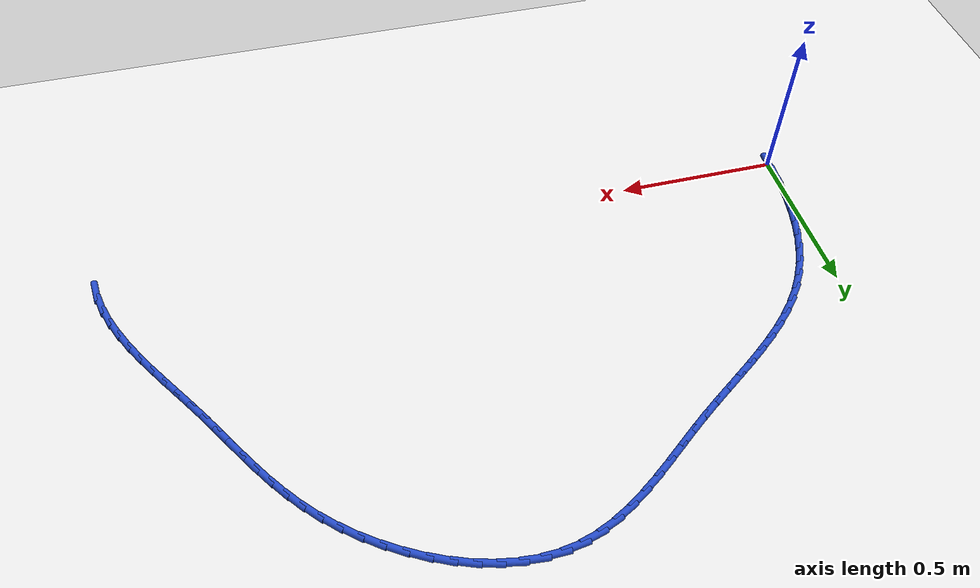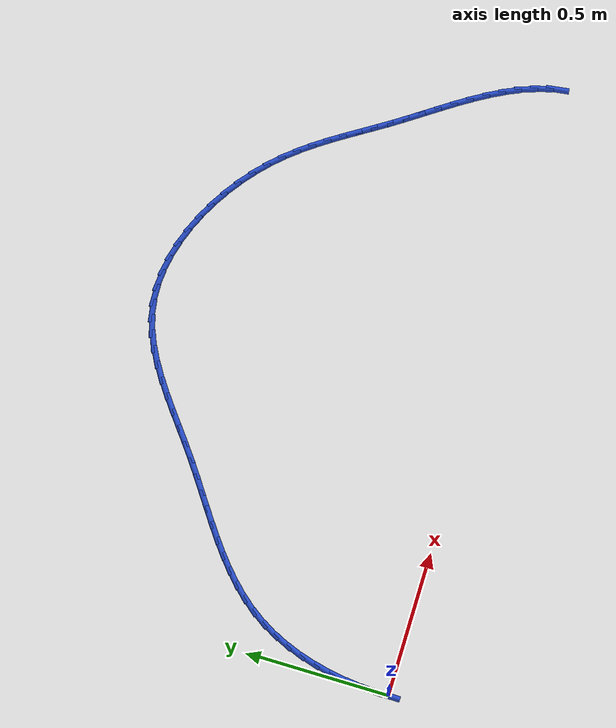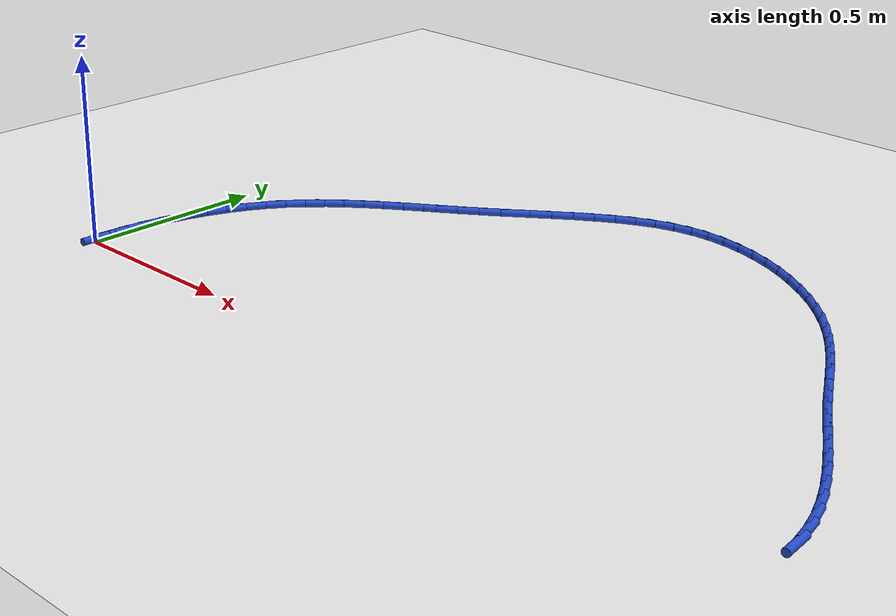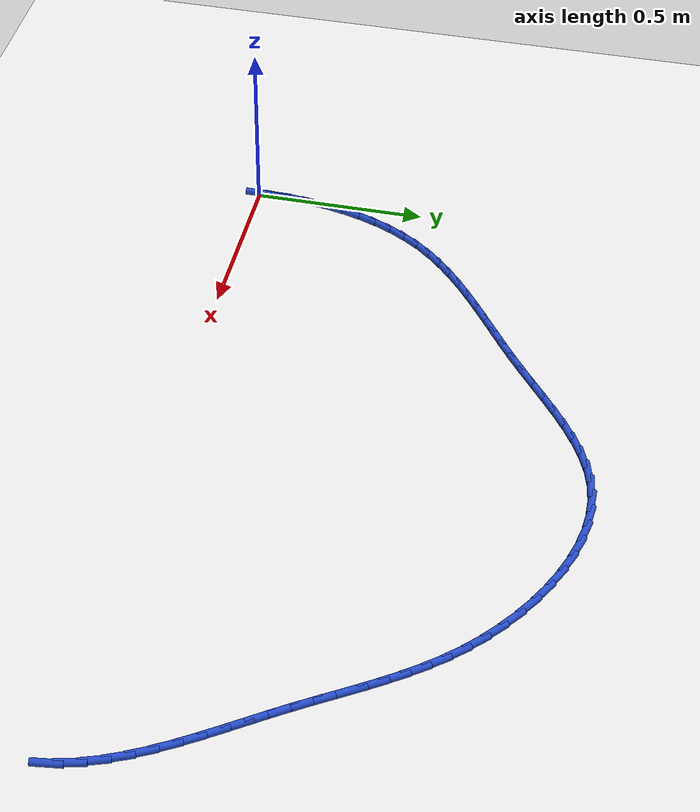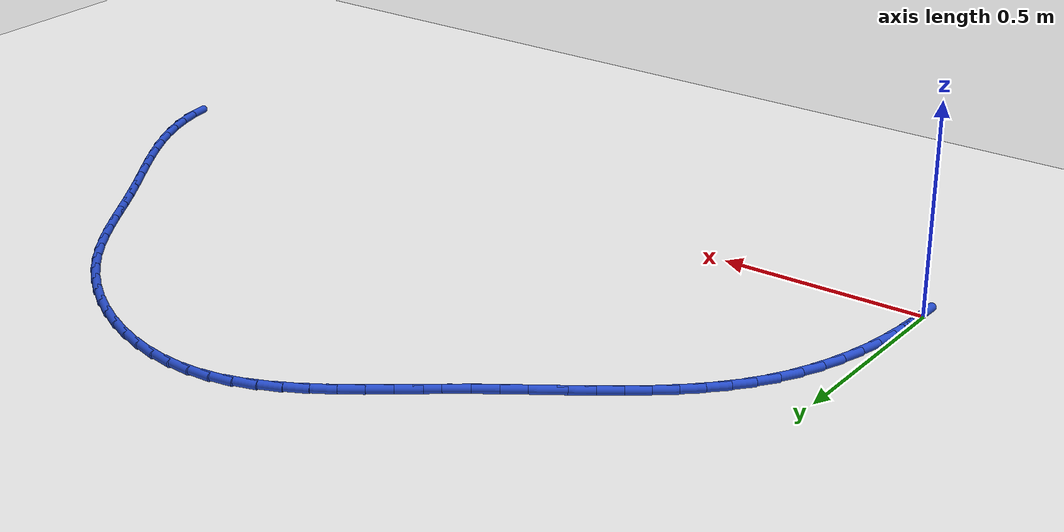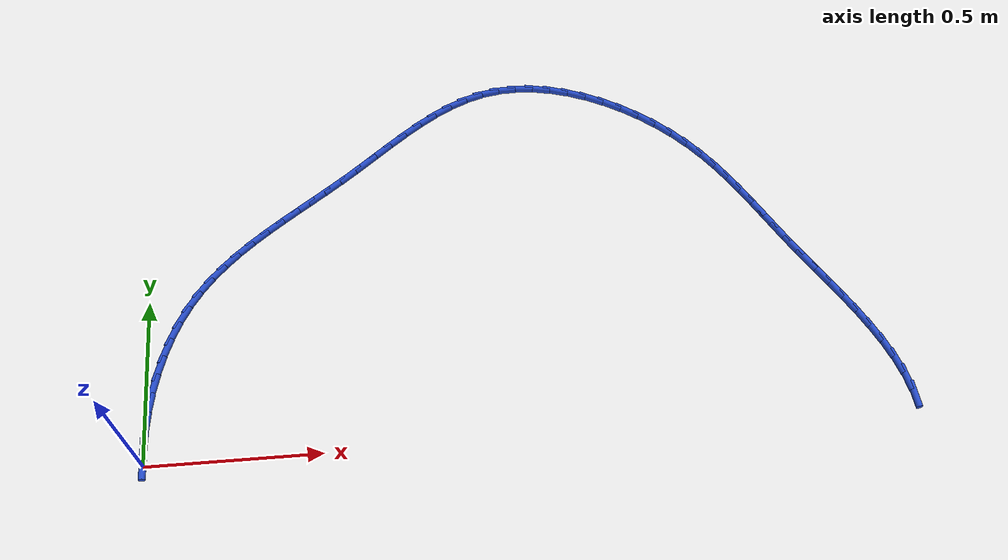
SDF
<sdf version="1.6">
 <world name="default">
  <model name="ground_plane">
   <static>1</static>
   <link name="link">
    <collision name="collision">
     <geometry><plane><normal>0 0 1</normal><size>100 100</size></plane></geometry>
     <surface><friction><ode><mu>100</mu><mu2>50</mu2></ode></friction></surface>
    </collision>
    <visual name="visual">
     <cast_shadows>0</cast_shadows>
     <geometry><plane><normal>0 0 1</normal><size>100 100</size></plane></geometry>
     <material>
      <script><uri>file://media/materials/scripts/gazebo.material</uri><name>Gazebo/WhiteGlow</name></script>
     </material>
    </visual>
   </link>
  </model>
  <model name="line">
   <link name="link_0">
    <pose>-1.214306433183765e-17 -9.71445146547012e-17 0.01 0 1.57 1.5540721267562472</pose>
    <collision name="collision">
     <geometry><cylinder><radius>0.01</radius><length>0.08</length></cylinder></geometry>
    </collision>
    <visual name="visual">
     <material>
      <script><name>Gazebo/Blue</name><uri>file://media/materials/scripts/gazebo.material</uri></script>
     </material>
     <geometry><cylinder><radius>0.01</radius><length>0.08</length></cylinder></geometry>
    </visual>
   </link>
   <link name="link_1">
    <pose>0.0009727735310104009 0.05816020093755722 0.01 0 1.57 1.5020352159463675</pose>
    <collision name="collision">
     <geometry><cylinder><radius>0.01</radius><length>0.08</length></cylinder></geometry>
    </collision>
    <visual name="visual">
     <material>
      <script><name>Gazebo/Blue</name><uri>file://media/materials/scripts/gazebo.material</uri></script>
     </material>
     <geometry><cylinder><radius>0.01</radius><length>0.08</length></cylinder></geometry>
    </visual>
   </link>
   <link name="link_2">
    <pose>0.004967329615018454 0.1161618607245263 0.01 0 1.57 1.4477439390376392</pose>
    <collision name="collision">
     <geometry><cylinder><radius>0.01</radius><length>0.08</length></cylinder></geometry>
    </collision>
    <visual name="visual">
     <material>
      <script><name>Gazebo/Blue</name><uri>file://media/materials/scripts/gazebo.material</uri></script>
     </material>
     <geometry><cylinder><radius>0.01</radius><length>0.08</length></cylinder></geometry>
    </visual>
   </link>
   <link name="link_3">
    <pose>0.012076144360255375 0.17364061676374193 0.01 0 1.57 1.3904949208233681</pose>
    <collision name="collision">
     <geometry><cylinder><radius>0.01</radius><length>0.08</length></cylinder></geometry>
    </collision>
    <visual name="visual">
     <material>
      <script><name>Gazebo/Blue</name><uri>file://media/materials/scripts/gazebo.material</uri></script>
     </material>
     <geometry><cylinder><radius>0.01</radius><length>0.08</length></cylinder></geometry>
    </visual>
   </link>
   <link name="link_4">
    <pose>0.02239169387495231 0.23023210645803868 0.01 0 1.57 1.3295662243365454</pose>
    <collision name="collision">
     <geometry><cylinder><radius>0.01</radius><length>0.08</length></cylinder></geometry>
    </collision>
    <visual name="visual">
     <material>
      <script><name>Gazebo/Blue</name><uri>file://media/materials/scripts/gazebo.material</uri></script>
     </material>
     <geometry><cylinder><radius>0.01</radius><length>0.08</length></cylinder></geometry>
    </visual>
   </link>
   <link name="link_5">
    <pose>0.036006454267340504 0.2855719672102514 0.01 0 1.57 1.2642233957185722</pose>
    <collision name="collision">
     <geometry><cylinder><radius>0.01</radius><length>0.08</length></cylinder></geometry>
    </collision>
    <visual name="visual">
     <material>
      <script><name>Gazebo/Blue</name><uri>file://media/materials/scripts/gazebo.material</uri></script>
     </material>
     <geometry><cylinder><radius>0.01</radius><length>0.08</length></cylinder></geometry>
    </visual>
   </link>
   <link name="link_6">
    <pose>0.05301290164565114 0.3392958364232149 0.01 0 1.57 1.1937399925289962</pose>
    <collision name="collision">
     <geometry><cylinder><radius>0.01</radius><length>0.08</length></cylinder></geometry>
    </collision>
    <visual name="visual">
     <material>
      <script><name>Gazebo/Blue</name><uri>file://media/materials/scripts/gazebo.material</uri></script>
     </material>
     <geometry><cylinder><radius>0.01</radius><length>0.08</length></cylinder></geometry>
    </visual>
   </link>
   <link name="link_7">
    <pose>0.0735035121181154 0.39103935149976377 0.01 0 1.57 1.1174385151535993</pose>
    <collision name="collision">
     <geometry><cylinder><radius>0.01</radius><length>0.08</length></cylinder></geometry>
    </collision>
    <visual name="visual">
     <material>
      <script><name>Gazebo/Blue</name><uri>file://media/materials/scripts/gazebo.material</uri></script>
     </material>
     <geometry><cylinder><radius>0.01</radius><length>0.08</length></cylinder></geometry>
    </visual>
   </link>
   <link name="link_8">
    <pose>0.09757076179296449 0.4404381498427328 0.01 0 1.57 1.0347579714537405</pose>
    <collision name="collision">
     <geometry><cylinder><radius>0.01</radius><length>0.08</length></cylinder></geometry>
    </collision>
    <visual name="visual">
     <material>
      <script><name>Gazebo/Blue</name><uri>file://media/materials/scripts/gazebo.material</uri></script>
     </material>
     <geometry><cylinder><radius>0.01</radius><length>0.08</length></cylinder></geometry>
    </visual>
   </link>
   <link name="link_9">
    <pose>0.1253071267784296 0.4871278688549566 0.01 0 1.57 0.9463374898829497</pose>
    <collision name="collision">
     <geometry><cylinder><radius>0.01</radius><length>0.08</length></cylinder></geometry>
    </collision>
    <visual name="visual">
     <material>
      <script><name>Gazebo/Blue</name><uri>file://media/materials/scripts/gazebo.material</uri></script>
     </material>
     <geometry><cylinder><radius>0.01</radius><length>0.08</length></cylinder></geometry>
    </visual>
   </link>
   <link name="link_10">
    <pose>0.1567742886520805 0.5307921194336553 0.01 0 1.57 0.862358845641101</pose>
    <collision name="collision">
     <geometry><cylinder><radius>0.01</radius><length>0.08</length></cylinder></geometry>
    </collision>
    <visual name="visual">
     <material>
      <script><name>Gazebo/Blue</name><uri>file://media/materials/scripts/gazebo.material</uri></script>
     </material>
     <geometry><cylinder><radius>0.01</radius><length>0.08</length></cylinder></geometry>
    </visual>
   </link>
   <link name="link_11">
    <pose>0.19172949457523022 0.5715887779525914 0.01 0 1.57 0.7897264656168406</pose>
    <collision name="collision">
     <geometry><cylinder><radius>0.01</radius><length>0.08</length></cylinder></geometry>
    </collision>
    <visual name="visual">
     <material>
      <script><name>Gazebo/Blue</name><uri>file://media/materials/scripts/gazebo.material</uri></script>
     </material>
     <geometry><cylinder><radius>0.01</radius><length>0.08</length></cylinder></geometry>
    </visual>
   </link>
   <link name="link_12">
    <pose>0.2297563421881506 0.6099462420158809 0.01 0 1.57 0.729242175847578</pose>
    <collision name="collision">
     <geometry><cylinder><radius>0.01</radius><length>0.08</length></cylinder></geometry>
    </collision>
    <visual name="visual">
     <material>
      <script><name>Gazebo/Blue</name><uri>file://media/materials/scripts/gazebo.material</uri></script>
     </material>
     <geometry><cylinder><radius>0.01</radius><length>0.08</length></cylinder></geometry>
    </visual>
   </link>
   <link name="link_13">
    <pose>0.270436404858347 0.6462960627564032 0.01 0 1.57 0.6809874851181144</pose>
    <collision name="collision">
     <geometry><cylinder><radius>0.01</radius><length>0.08</length></cylinder></geometry>
    </collision>
    <visual name="visual">
     <material>
      <script><name>Gazebo/Blue</name><uri>file://media/materials/scripts/gazebo.material</uri></script>
     </material>
     <geometry><cylinder><radius>0.01</radius><length>0.08</length></cylinder></geometry>
    </visual>
   </link>
   <link name="link_14">
    <pose>0.313351255953325 0.6810697913070374 0.01 0 1.57 0.6446558508736686</pose>
    <collision name="collision">
     <geometry><cylinder><radius>0.01</radius><length>0.08</length></cylinder></geometry>
    </collision>
    <visual name="visual">
     <material>
      <script><name>Gazebo/Blue</name><uri>file://media/materials/scripts/gazebo.material</uri></script>
     </material>
     <geometry><cylinder><radius>0.01</radius><length>0.08</length></cylinder></geometry>
    </visual>
   </link>
   <link name="link_15">
    <pose>0.3580824688405901 0.7146989788006636 0.01 0 1.57 0.6197728411225927</pose>
    <collision name="collision">
     <geometry><cylinder><radius>0.01</radius><length>0.08</length></cylinder></geometry>
    </collision>
    <visual name="visual">
     <material>
      <script><name>Gazebo/Blue</name><uri>file://media/materials/scripts/gazebo.material</uri></script>
     </material>
     <geometry><cylinder><radius>0.01</radius><length>0.08</length></cylinder></geometry>
    </visual>
   </link>
   <link name="link_16">
    <pose>0.4042116168876474 0.7476151763701604 0.01 0 1.57 0.6058470002908375</pose>
    <collision name="collision">
     <geometry><cylinder><radius>0.01</radius><length>0.08</length></cylinder></geometry>
    </collision>
    <visual name="visual">
     <material>
      <script><name>Gazebo/Blue</name><uri>file://media/materials/scripts/gazebo.material</uri></script>
     </material>
     <geometry><cylinder><radius>0.01</radius><length>0.08</length></cylinder></geometry>
    </visual>
   </link>
   <link name="link_17">
    <pose>0.4513202734620028 0.7802499351484081 0.01 0 1.57 0.6024572084732797</pose>
    <collision name="collision">
     <geometry><cylinder><radius>0.01</radius><length>0.08</length></cylinder></geometry>
    </collision>
    <visual name="visual">
     <material>
      <script><name>Gazebo/Blue</name><uri>file://media/materials/scripts/gazebo.material</uri></script>
     </material>
     <geometry><cylinder><radius>0.01</radius><length>0.08</length></cylinder></geometry>
    </visual>
   </link>
   <link name="link_18">
    <pose>0.49899001193116144 0.8130348062682856 0.01 0 1.57 0.6092907750018002</pose>
    <collision name="collision">
     <geometry><cylinder><radius>0.01</radius><length>0.08</length></cylinder></geometry>
    </collision>
    <visual name="visual">
     <material>
      <script><name>Gazebo/Blue</name><uri>file://media/materials/scripts/gazebo.material</uri></script>
     </material>
     <geometry><cylinder><radius>0.01</radius><length>0.08</length></cylinder></geometry>
    </visual>
   </link>
   <link name="link_19">
    <pose>0.5468024056626288 0.8464013408626727 0.01 0 1.57 0.6261362705788248</pose>
    <collision name="collision">
     <geometry><cylinder><radius>0.01</radius><length>0.08</length></cylinder></geometry>
    </collision>
    <visual name="visual">
     <material>
      <script><name>Gazebo/Blue</name><uri>file://media/materials/scripts/gazebo.material</uri></script>
     </material>
     <geometry><cylinder><radius>0.01</radius><length>0.08</length></cylinder></geometry>
    </visual>
   </link>
   <link name="link_20">
    <pose>0.5943392575806674 0.8807806388584037 0.01 0 1.57 0.6470503060719165</pose>
    <collision name="collision">
     <geometry><cylinder><radius>0.01</radius><length>0.08</length></cylinder></geometry>
    </collision>
    <visual name="visual">
     <material>
      <script><name>Gazebo/Blue</name><uri>file://media/materials/scripts/gazebo.material</uri></script>
     </material>
     <geometry><cylinder><radius>0.01</radius><length>0.08</length></cylinder></geometry>
    </visual>
   </link>
   <link name="link_21">
    <pose>0.6413405256945882 0.9162929379305289 0.01 0 1.57 0.6561812984485437</pose>
    <collision name="collision">
     <geometry><cylinder><radius>0.01</radius><length>0.08</length></cylinder></geometry>
    </collision>
    <visual name="visual">
     <material>
      <script><name>Gazebo/Blue</name><uri>file://media/materials/scripts/gazebo.material</uri></script>
     </material>
     <geometry><cylinder><radius>0.01</radius><length>0.08</length></cylinder></geometry>
    </visual>
   </link>
   <link name="link_22">
    <pose>0.6879800844440704 0.9522055898757288 0.01 0 1.57 0.6509053188648611</pose>
    <collision name="collision">
     <geometry><cylinder><radius>0.01</radius><length>0.08</length></cylinder></geometry>
    </collision>
    <visual name="visual">
     <material>
      <script><name>Gazebo/Blue</name><uri>file://media/materials/scripts/gazebo.material</uri></script>
     </material>
     <geometry><cylinder><radius>0.01</radius><length>0.08</length></cylinder></geometry>
    </visual>
   </link>
   <link name="link_23">
    <pose>0.7345055653016336 0.9876409731102385 0.01 0 1.57 0.6308489117831448</pose>
    <collision name="collision">
     <geometry><cylinder><radius>0.01</radius><length>0.08</length></cylinder></geometry>
    </collision>
    <visual name="visual">
     <material>
      <script><name>Gazebo/Blue</name><uri>file://media/materials/scripts/gazebo.material</uri></script>
     </material>
     <geometry><cylinder><radius>0.01</radius><length>0.08</length></cylinder></geometry>
    </visual>
   </link>
   <link name="link_24">
    <pose>0.781164599739798 1.0217214660502938 0.01 0 1.57 0.5951479186685841</pose>
    <collision name="collision">
     <geometry><cylinder><radius>0.01</radius><length>0.08</length></cylinder></geometry>
    </collision>
    <visual name="visual">
     <material>
      <script><name>Gazebo/Blue</name><uri>file://media/materials/scripts/gazebo.material</uri></script>
     </material>
     <geometry><cylinder><radius>0.01</radius><length>0.08</length></cylinder></geometry>
    </visual>
   </link>
   <link name="link_25">
    <pose>0.8282048192310844 1.05356944711213 0.01 0 1.57 0.5425212122136491</pose>
    <collision name="collision">
     <geometry><cylinder><radius>0.01</radius><length>0.08</length></cylinder></geometry>
    </collision>
    <visual name="visual">
     <material>
      <script><name>Gazebo/Blue</name><uri>file://media/materials/scripts/gazebo.material</uri></script>
     </material>
     <geometry><cylinder><radius>0.01</radius><length>0.08</length></cylinder></geometry>
    </visual>
   </link>
   <link name="link_26">
    <pose>0.8758738552480124 1.0823072947119825 0.01 0 1.57 0.4714830755557615</pose>
    <collision name="collision">
     <geometry><cylinder><radius>0.01</radius><length>0.08</length></cylinder></geometry>
    </collision>
    <visual name="visual">
     <material>
      <script><name>Gazebo/Blue</name><uri>file://media/materials/scripts/gazebo.material</uri></script>
     </material>
     <geometry><cylinder><radius>0.01</radius><length>0.08</length></cylinder></geometry>
    </visual>
   </link>
   <link name="link_27">
    <pose>0.9244193392631026 1.107057387266087 0.01 0 1.57 0.38079949614361625</pose>
    <collision name="collision">
     <geometry><cylinder><radius>0.01</radius><length>0.08</length></cylinder></geometry>
    </collision>
    <visual name="visual">
     <material>
      <script><name>Gazebo/Blue</name><uri>file://media/materials/scripts/gazebo.material</uri></script>
     </material>
     <geometry><cylinder><radius>0.01</radius><length>0.08</length></cylinder></geometry>
    </visual>
   </link>
   <link name="link_28">
    <pose>0.9740889027488753 1.1269421031906788 0.01 0 1.57 0.27028440935308357</pose>
    <collision name="collision">
     <geometry><cylinder><radius>0.01</radius><length>0.08</length></cylinder></geometry>
    </collision>
    <visual name="visual">
     <material>
      <script><name>Gazebo/Blue</name><uri>file://media/materials/scripts/gazebo.material</uri></script>
     </material>
     <geometry><cylinder><radius>0.01</radius><length>0.08</length></cylinder></geometry>
    </visual>
   </link>
   <link name="link_29">
    <pose>1.0251301771778503 1.1410838209019933 0.01 0 1.57 0.1431048206023963</pose>
    <collision name="collision">
     <geometry><cylinder><radius>0.01</radius><length>0.08</length></cylinder></geometry>
    </collision>
    <visual name="visual">
     <material>
      <script><name>Gazebo/Blue</name><uri>file://media/materials/scripts/gazebo.material</uri></script>
     </material>
     <geometry><cylinder><radius>0.01</radius><length>0.08</length></cylinder></geometry>
    </visual>
   </link>
   <link name="link_30">
    <pose>1.0777567493860596 1.1486667716092285 0.01 0 1.57 0.01783977474080383</pose>
    <collision name="collision">
     <geometry><cylinder><radius>0.01</radius><length>0.08</length></cylinder></geometry>
    </collision>
    <visual name="visual">
     <material>
      <script><name>Gazebo/Blue</name><uri>file://media/materials/scripts/gazebo.material</uri></script>
     </material>
     <geometry><cylinder><radius>0.01</radius><length>0.08</length></cylinder></geometry>
    </visual>
   </link>
   <link name="link_31">
    <pose>1.1317665283505252 1.1496303961288545 0.01 0 1.57 -0.09461746768448966</pose>
    <collision name="collision">
     <geometry><cylinder><radius>0.01</radius><length>0.08</length></cylinder></geometry>
    </collision>
    <visual name="visual">
     <material>
      <script><name>Gazebo/Blue</name><uri>file://media/materials/scripts/gazebo.material</uri></script>
     </material>
     <geometry><cylinder><radius>0.01</radius><length>0.08</length></cylinder></geometry>
    </visual>
   </link>
   <link name="link_32">
    <pose>1.1866794771772098 1.144419111396656 0.01 0 1.57 -0.1950715477841165</pose>
    <collision name="collision">
     <geometry><cylinder><radius>0.01</radius><length>0.08</length></cylinder></geometry>
    </collision>
    <visual name="visual">
     <material>
      <script><name>Gazebo/Blue</name><uri>file://media/materials/scripts/gazebo.material</uri></script>
     </material>
     <geometry><cylinder><radius>0.01</radius><length>0.08</length></cylinder></geometry>
    </visual>
   </link>
   <link name="link_33">
    <pose>1.2420104673040486 1.1334865849652758 0.01 0 1.57 -0.2851520629050182</pose>
    <collision name="collision">
     <geometry><cylinder><radius>0.01</radius><length>0.08</length></cylinder></geometry>
    </collision>
    <visual name="visual">
     <material>
      <script><name>Gazebo/Blue</name><uri>file://media/materials/scripts/gazebo.material</uri></script>
     </material>
     <geometry><cylinder><radius>0.01</radius><length>0.08</length></cylinder></geometry>
    </visual>
   </link>
   <link name="link_34">
    <pose>1.2972743701689766 1.117286484387357 0.01 0 1.57 -0.36671281235909176</pose>
    <collision name="collision">
     <geometry><cylinder><radius>0.01</radius><length>0.08</length></cylinder></geometry>
    </collision>
    <visual name="visual">
     <material>
      <script><name>Gazebo/Blue</name><uri>file://media/materials/scripts/gazebo.material</uri></script>
     </material>
     <geometry><cylinder><radius>0.01</radius><length>0.08</length></cylinder></geometry>
    </visual>
   </link>
   <link name="link_35">
    <pose>1.3519860572099314 1.0962724772155426 0.01 0 1.57 -0.4416063809188174</pose>
    <collision name="collision">
     <geometry><cylinder><radius>0.01</radius><length>0.08</length></cylinder></geometry>
    </collision>
    <visual name="visual">
     <material>
      <script><name>Gazebo/Blue</name><uri>file://media/materials/scripts/gazebo.material</uri></script>
     </material>
     <geometry><cylinder><radius>0.01</radius><length>0.08</length></cylinder></geometry>
    </visual>
   </link>
   <link name="link_36">
    <pose>1.4056603998648463 1.0708982310024748 0.01 0 1.57 -0.511593669827605</pose>
    <collision name="collision">
     <geometry><cylinder><radius>0.01</radius><length>0.08</length></cylinder></geometry>
    </collision>
    <visual name="visual">
     <material>
      <script><name>Gazebo/Blue</name><uri>file://media/materials/scripts/gazebo.material</uri></script>
     </material>
     <geometry><cylinder><radius>0.01</radius><length>0.08</length></cylinder></geometry>
    </visual>
   </link>
   <link name="link_37">
    <pose>1.4578122695716589 1.0416174133007974 0.01 0 1.57 -0.578334682987203</pose>
    <collision name="collision">
     <geometry><cylinder><radius>0.01</radius><length>0.08</length></cylinder></geometry>
    </collision>
    <visual name="visual">
     <material>
      <script><name>Gazebo/Blue</name><uri>file://media/materials/scripts/gazebo.material</uri></script>
     </material>
     <geometry><cylinder><radius>0.01</radius><length>0.08</length></cylinder></geometry>
    </visual>
   </link>
   <link name="link_38">
    <pose>1.507956537768303 1.0088836916631525 0.01 0 1.57 -0.6434246081056233</pose>
    <collision name="collision">
     <geometry><cylinder><radius>0.01</radius><length>0.08</length></cylinder></geometry>
    </collision>
    <visual name="visual">
     <material>
      <script><name>Gazebo/Blue</name><uri>file://media/materials/scripts/gazebo.material</uri></script>
     </material>
     <geometry><cylinder><radius>0.01</radius><length>0.08</length></cylinder></geometry>
    </visual>
   </link>
   <link name="link_39">
    <pose>1.5556080758927167 0.9731507336421836 0.01 0 1.57 -0.7084559343572154</pose>
    <collision name="collision">
     <geometry><cylinder><radius>0.01</radius><length>0.08</length></cylinder></geometry>
    </collision>
    <visual name="visual">
     <material>
      <script><name>Gazebo/Blue</name><uri>file://media/materials/scripts/gazebo.material</uri></script>
     </material>
     <geometry><cylinder><radius>0.01</radius><length>0.08</length></cylinder></geometry>
    </visual>
   </link>
   <link name="link_40">
    <pose>1.6002817553828337 0.9348722067905335 0.01 0 1.57 -0.775030597054525</pose>
    <collision name="collision">
     <geometry><cylinder><radius>0.01</radius><length>0.08</length></cylinder></geometry>
    </collision>
    <visual name="visual">
     <material>
      <script><name>Gazebo/Blue</name><uri>file://media/materials/scripts/gazebo.material</uri></script>
     </material>
     <geometry><cylinder><radius>0.01</radius><length>0.08</length></cylinder></geometry>
    </visual>
   </link>
   <link name="link_41">
    <pose>1.6414994888828156 0.8945003886880394 0.01 0 1.57 -0.8403959211284232</pose>
    <collision name="collision">
     <geometry><cylinder><radius>0.01</radius><length>0.08</length></cylinder></geometry>
    </collision>
    <visual name="visual">
     <material>
      <script><name>Gazebo/Blue</name><uri>file://media/materials/scripts/gazebo.material</uri></script>
     </material>
     <geometry><cylinder><radius>0.01</radius><length>0.08</length></cylinder></geometry>
    </visual>
   </link>
   <link name="link_42">
    <pose>1.6792018317478494 0.852404914542635 0.01 0 1.57 -0.8972811440452079</pose>
    <collision name="collision">
     <geometry><cylinder><radius>0.01</radius><length>0.08</length></cylinder></geometry>
    </collision>
    <visual name="visual">
     <material>
      <script><name>Gazebo/Blue</name><uri>file://media/materials/scripts/gazebo.material</uri></script>
     </material>
     <geometry><cylinder><radius>0.01</radius><length>0.08</length></cylinder></geometry>
    </visual>
   </link>
   <link name="link_43">
    <pose>1.7139760430065338 0.808827756703013 0.01 0 1.57 -0.943655455036433</pose>
    <collision name="collision">
     <geometry><cylinder><radius>0.01</radius><length>0.08</length></cylinder></geometry>
    </collision>
    <visual name="visual">
     <material>
      <script><name>Gazebo/Blue</name><uri>file://media/materials/scripts/gazebo.material</uri></script>
     </material>
     <geometry><cylinder><radius>0.01</radius><length>0.08</length></cylinder></geometry>
    </visual>
   </link>
   <link name="link_44">
    <pose>1.7464647566415024 0.7639999561976133 0.01 0 1.57 -0.9785638173785028</pose>
    <collision name="collision">
     <geometry><cylinder><radius>0.01</radius><length>0.08</length></cylinder></geometry>
    </collision>
    <visual name="visual">
     <material>
      <script><name>Gazebo/Blue</name><uri>file://media/materials/scripts/gazebo.material</uri></script>
     </material>
     <geometry><cylinder><radius>0.01</radius><length>0.08</length></cylinder></geometry>
    </visual>
   </link>
   <link name="link_45">
    <pose>1.7773106066353899 0.7181525540548763 0.01 0 1.57 -1.0015043691276413</pose>
    <collision name="collision">
     <geometry><cylinder><radius>0.01</radius><length>0.08</length></cylinder></geometry>
    </collision>
    <visual name="visual">
     <material>
      <script><name>Gazebo/Blue</name><uri>file://media/materials/scripts/gazebo.material</uri></script>
     </material>
     <geometry><cylinder><radius>0.01</radius><length>0.08</length></cylinder></geometry>
    </visual>
   </link>
   <link name="link_46">
    <pose>1.8071562269708312 0.6715165913032423 0.01 0 1.57 -1.0123174225565108</pose>
    <collision name="collision">
     <geometry><cylinder><radius>0.01</radius><length>0.08</length></cylinder></geometry>
    </collision>
    <visual name="visual">
     <material>
      <script><name>Gazebo/Blue</name><uri>file://media/materials/scripts/gazebo.material</uri></script>
     </material>
     <geometry><cylinder><radius>0.01</radius><length>0.08</length></cylinder></geometry>
    </visual>
   </link>
   <link name="link_47">
    <pose>1.836644251630461 0.6243231089711511 0.01 0 1.57 -1.0110917724344834</pose>
    <collision name="collision">
     <geometry><cylinder><radius>0.01</radius><length>0.08</length></cylinder></geometry>
    </collision>
    <visual name="visual">
     <material>
      <script><name>Gazebo/Blue</name><uri>file://media/materials/scripts/gazebo.material</uri></script>
     </material>
     <geometry><cylinder><radius>0.01</radius><length>0.08</length></cylinder></geometry>
    </visual>
   </link>
   <link name="link_48">
    <pose>1.8664173145969132 0.5768031480870428 0.01 0 1.57 -0.9981527321624908</pose>
    <collision name="collision">
     <geometry><cylinder><radius>0.01</radius><length>0.08</length></cylinder></geometry>
    </collision>
    <visual name="visual">
     <material>
      <script><name>Gazebo/Blue</name><uri>file://media/materials/scripts/gazebo.material</uri></script>
     </material>
     <geometry><cylinder><radius>0.01</radius><length>0.08</length></cylinder></geometry>
    </visual>
   </link>
   <link name="link_49">
    <pose>1.8971155985999373 0.5291871005699071 0.01 0 1.57 -0.9806829998110577</pose>
    <collision name="collision">
     <geometry><cylinder><radius>0.01</radius><length>0.08</length></cylinder></geometry>
    </collision>
    <visual name="visual">
     <material>
      <script><name>Gazebo/Blue</name><uri>file://media/materials/scripts/gazebo.material</uri></script>
     </material>
     <geometry><cylinder><radius>0.01</radius><length>0.08</length></cylinder></geometry>
    </visual>
   </link>
   <link name="link_50">
    <pose>1.9289849884507286 0.481600945404838 0.01 0 1.57 -0.9727546715873582</pose>
    <collision name="collision">
     <geometry><cylinder><radius>0.01</radius><length>0.08</length></cylinder></geometry>
    </collision>
    <visual name="visual">
     <material>
      <script><name>Gazebo/Blue</name><uri>file://media/materials/scripts/gazebo.material</uri></script>
     </material>
     <geometry><cylinder><radius>0.01</radius><length>0.08</length></cylinder></geometry>
    </visual>
   </link>
   <link name="link_51">
    <pose>1.9614464360173005 0.433952213381264 0.01 0 1.57 -0.9758297173927708</pose>
    <collision name="collision">
     <geometry><cylinder><radius>0.01</radius><length>0.08</length></cylinder></geometry>
    </collision>
    <visual name="visual">
     <material>
      <script><name>Gazebo/Blue</name><uri>file://media/materials/scripts/gazebo.material</uri></script>
     </material>
     <geometry><cylinder><radius>0.01</radius><length>0.08</length></cylinder></geometry>
    </visual>
   </link>
   <link name="link_52">
    <pose>1.9938173012426283 0.3861210033993928 0.01 0 1.57 -0.9898951338801801</pose>
    <collision name="collision">
     <geometry><cylinder><radius>0.01</radius><length>0.08</length></cylinder></geometry>
    </collision>
    <visual name="visual">
     <material>
      <script><name>Gazebo/Blue</name><uri>file://media/materials/scripts/gazebo.material</uri></script>
     </material>
     <geometry><cylinder><radius>0.01</radius><length>0.08</length></cylinder></geometry>
    </visual>
   </link>
   <link name="link_53">
    <pose>2.025414944069687 0.33798741435943375 0.01 0 1.57 -1.0152482588654481</pose>
    <collision name="collision">
     <geometry><cylinder><radius>0.01</radius><length>0.08</length></cylinder></geometry>
    </collision>
    <visual name="visual">
     <material>
      <script><name>Gazebo/Blue</name><uri>file://media/materials/scripts/gazebo.material</uri></script>
     </material>
     <geometry><cylinder><radius>0.01</radius><length>0.08</length></cylinder></geometry>
    </visual>
   </link>
   <link name="link_54">
    <pose>2.0555567244414505 0.2894315451615945 0.01 0 1.57 -1.052460520116831</pose>
    <collision name="collision">
     <geometry><cylinder><radius>0.01</radius><length>0.08</length></cylinder></geometry>
    </collision>
    <visual name="visual">
     <material>
      <script><name>Gazebo/Blue</name><uri>file://media/materials/scripts/gazebo.material</uri></script>
     </material>
     <geometry><cylinder><radius>0.01</radius><length>0.08</length></cylinder></geometry>
    </visual>
   </link>
   <link name="link_55">
    <pose>2.0835600023008927 0.24033349470608412 0.01 0 1.57 -1.1023041194834293</pose>
    <collision name="collision">
     <geometry><cylinder><radius>0.01</radius><length>0.08</length></cylinder></geometry>
    </collision>
    <visual name="visual">
     <material>
      <script><name>Gazebo/Blue</name><uri>file://media/materials/scripts/gazebo.material</uri></script>
     </material>
     <geometry><cylinder><radius>0.01</radius><length>0.08</length></cylinder></geometry>
    </visual>
   </link>
   <link name="link_56">
    <pose>2.1087421375909887 0.19057336189311053 0.01 0 1.57 -1.1656129666748762</pose>
    <collision name="collision">
     <geometry><cylinder><radius>0.01</radius><length>0.08</length></cylinder></geometry>
    </collision>
    <visual name="visual">
     <material>
      <script><name>Gazebo/Blue</name><uri>file://media/materials/scripts/gazebo.material</uri></script>
     </material>
     <geometry><cylinder><radius>0.01</radius><length>0.08</length></cylinder></geometry>
    </visual>
   </link>
   <link name="link_57">
    <pose>2.1304204902547137 0.14003124562288283 0.01 0 1.57 -1.2430409237290074</pose>
    <collision name="collision">
     <geometry><cylinder><radius>0.01</radius><length>0.08</length></cylinder></geometry>
    </collision>
    <visual name="visual">
     <material>
      <script><name>Gazebo/Blue</name><uri>file://media/materials/scripts/gazebo.material</uri></script>
     </material>
     <geometry><cylinder><radius>0.01</radius><length>0.08</length></cylinder></geometry>
    </visual>
   </link>
   <link name="link_58">
    <pose>2.1479124202350413 0.08858724479560875 0.01 0 1.57 -1.3346913257717568</pose>
    <collision name="collision">
     <geometry><cylinder><radius>0.01</radius><length>0.08</length></cylinder></geometry>
    </collision>
    <visual name="visual">
     <material>
      <script><name>Gazebo/Blue</name><uri>file://media/materials/scripts/gazebo.material</uri></script>
     </material>
     <geometry><cylinder><radius>0.01</radius><length>0.08</length></cylinder></geometry>
    </visual>
   </link>
   <link name="link_59">
    <pose>2.1605352874749455 0.03612145831149745 0.01 0 1.57 -1.4389651761644684</pose>
    <collision name="collision">
     <geometry><cylinder><radius>0.01</radius><length>0.08</length></cylinder></geometry>
    </collision>
    <visual name="visual">
     <material>
      <script><name>Gazebo/Blue</name><uri>file://media/materials/scripts/gazebo.material</uri></script>
     </material>
     <geometry><cylinder><radius>0.01</radius><length>0.08</length></cylinder></geometry>
    </visual>
   </link>
   <link name="link_121">
    <pose>0.0009537103247745128 0.05818236197362861 0.01 0 1.57 1.554406051650329</pose>
    <collision name="collision">
     <geometry><cylinder><radius>0.01</radius><length>0.08</length></cylinder></geometry>
    </collision>
    <visual name="visual">
     <material>
      <script><name>Gazebo/Blue</name><uri>file://media/materials/scripts/gazebo.material</uri></script>
     </material>
     <geometry><cylinder><radius>0.01</radius><length>0.08</length></cylinder></geometry>
    </visual>
   </link>
  </model>
 </world>
</sdf>
